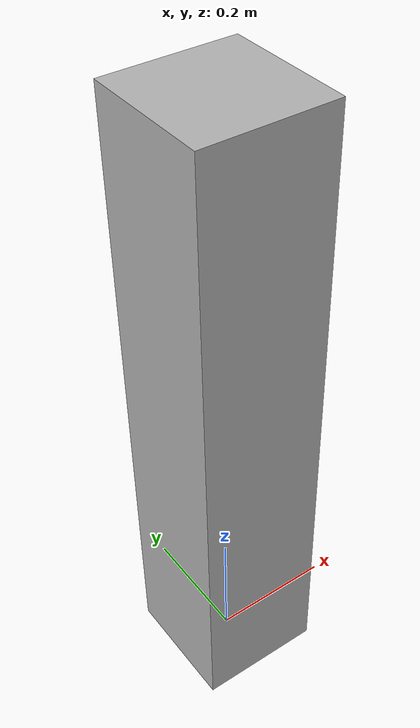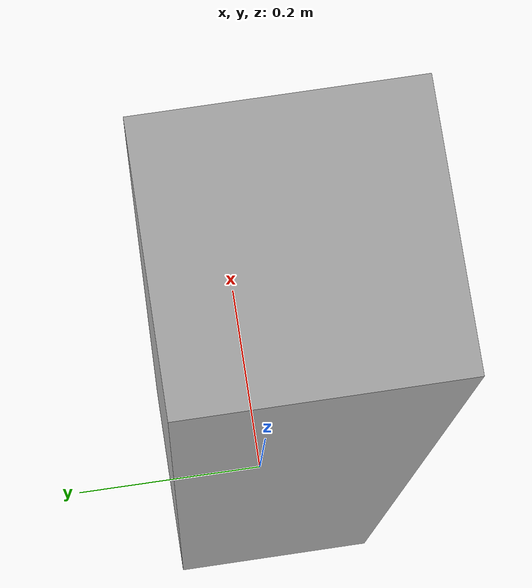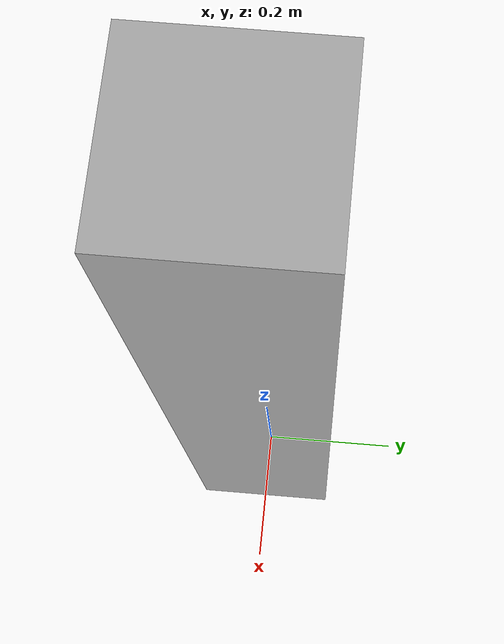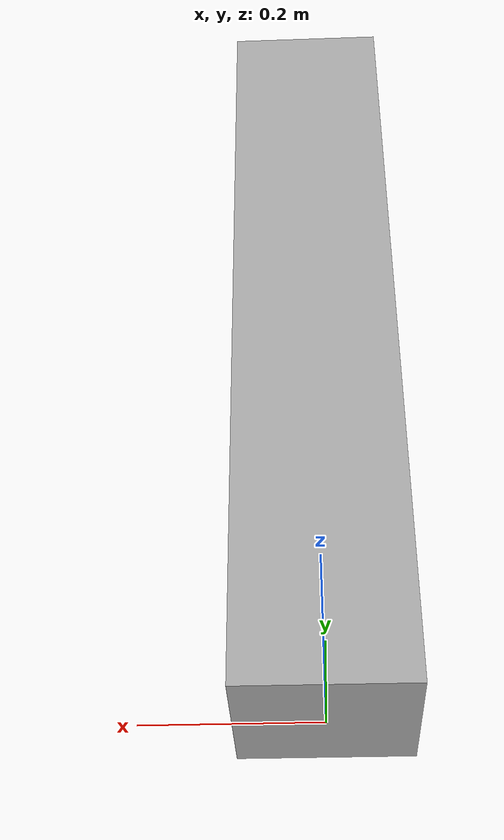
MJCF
<mujoco model="box_model">
    <worldbody>
        <!-- Free object (pickable) -->
        <body name="box_base" pos="0 0 0.5">
            <!-- Box geometry -->
            <geom
                name="box_geom"
                type="box"
                size="0.1 0.1 0.5"
                rgba="0.7 0.7 0.7 1"
                contype="1"
                conaffinity="1"
                friction="2 0.5 0.5"
                mass="1.0"
                priority="1"
                solref="0.0001 1"
                solimp="0.9 0.95 0.01"
            />
            <!-- Optional site for robot to target when grasping -->
        </body>
    </worldbody>
</mujoco>
